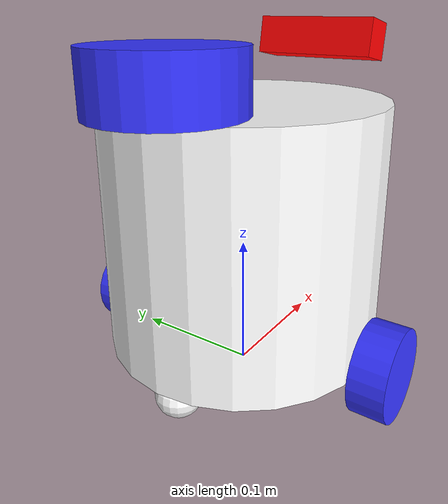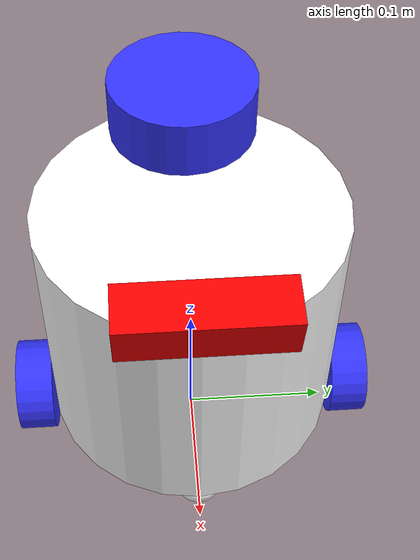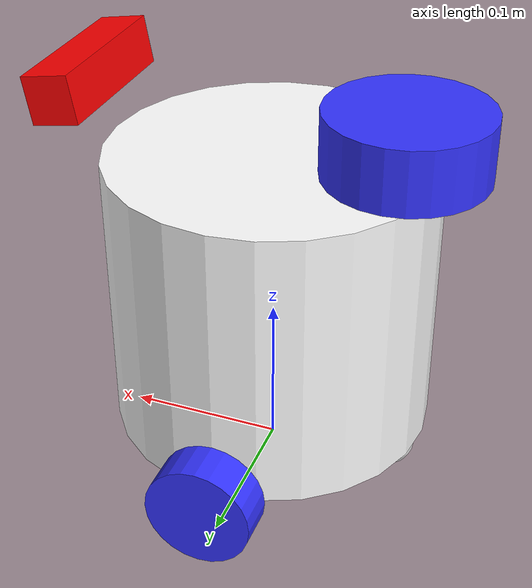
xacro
<?xml version="1.0"?>
<robot xmlns:xacro="http://www.ros.org/wiki/xacro"  name="robot">

    <xacro:arg name="use_ros2_control" default="true"/>
    <xacro:arg name="sim_mode" default="false"/>
    <xacro:include filename="robot_core.xacro" />
    <xacro:include filename="lidar.xacro" />
    <xacro:include filename="camera.xacro" />

    <xacro:if value="$(arg use_ros2_control)">
        <xacro:include filename="ros2_control.xacro" />
    </xacro:if>
    <xacro:unless value="$(arg use_ros2_control)">
        <xacro:include filename="gazebo_control.xacro" />
    </xacro:unless>

</robot>

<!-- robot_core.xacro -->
<robot xmlns:xacro="http://www.ros.org/wiki/xacro">

    <xacro:include filename="inertial_macros.xacro"/>

    <xacro:property name="chassis_radius" value="0.102"/>
    <xacro:property name="chassis_height" value="0.18"/>
    <xacro:property name="chassis_mass" value="1.5"/>

    <xacro:property name="wheel_radius" value="0.033"/>
    <xacro:property name="wheel_thickness" value="0.026"/>
    <xacro:property name="wheel_mass" value="0.05"/>

    <xacro:property name="wheel_offset_x" value="0.15"/>
    <xacro:property name="wheel_offset_y" value="0.105"/>
    <xacro:property name="wheel_offset_z" value="0.0"/>

    <xacro:property name="caster_wheel_radius" value="0.017"/>
    <xacro:property name="caster_wheel_mass" value="0.01"/>
    <xacro:property name="caster_wheel_offset_x" value="0.08"/>

    <xacro:property name="caster_wheel_offset_z" value="${-chassis_height/2 - 0.03 + caster_wheel_radius}"/>

    <material name="white">
        <color rgba="1 1 1 1"/>
    </material>
    <material name="red">
        <color rgba="1 0 0 1"/>
    </material>
    <material name="blue">
        <color rgba="0.2 0.2 1 1"/>
    </material>

    <link name="base_link"/>
    <link name="base_footprint"/>

    <joint name="base_footprint_joint" type="fixed">
        <parent link="base_link"/>
        <child link="base_footprint"/>
        <origin xyz="0 0 0" rpy="0 0 0"/>
    </joint>

    <link name="chassis">
        <visual>
            <origin xyz="0 0 0"/>
            <geometry>
                <cylinder radius="${chassis_radius}" length="${chassis_height}"/>
            </geometry>
            <material name="white"/>
        </visual>
        <collision>
            <origin xyz="0 0 0"/>
            <geometry>
                <cylinder radius="${chassis_radius}" length="${chassis_height}"/>
            </geometry>
        </collision>
        <xacro:inertial_cylinder mass="0.5" length="${chassis_height}" radius="${chassis_radius}">
            <origin xyz="0 0 0" rpy="0 0 0"/>
        </xacro:inertial_cylinder>
    </link>

    <link name="right_wheel">
        <visual>
            <geometry>
                <cylinder radius="${wheel_radius}" length="${wheel_thickness}"/>
            </geometry>
            <material name="blue"/>
        </visual>
        <collision>
            <geometry>
                <sphere radius="${wheel_radius}"/>
            </geometry>
        </collision>
        <xacro:inertial_cylinder mass="${wheel_mass}" length="${wheel_thickness}" radius="${wheel_radius}">
            <origin xyz="0 0 0" rpy="0 0 0"/>
        </xacro:inertial_cylinder>
    </link>

    <link name="left_wheel">
        <visual>
            <geometry>
                <cylinder radius="${wheel_radius}" length="${wheel_thickness}"/>
            </geometry>
            <material name="blue"/>
        </visual>
        <collision>
            <geometry>
                <sphere radius="${wheel_radius}"/>
            </geometry>
        </collision>
        <xacro:inertial_cylinder mass="${wheel_mass}" length="${wheel_thickness}" radius="${wheel_radius}">
            <origin xyz="0 0 0" rpy="0 0 0"/>
        </xacro:inertial_cylinder>
    </link>

    <link name="caster_wheel">
        <visual>
            <geometry>
                <sphere radius="${caster_wheel_radius}"/>
            </geometry>
            <material name="white"/>
        </visual>
        <collision>
            <geometry>
                <sphere radius="${caster_wheel_radius}"/>
            </geometry>
        </collision>
        <xacro:inertial_sphere mass="${caster_wheel_mass}" radius="${caster_wheel_radius}">
            <origin xyz="0 0 0" rpy="0 0 0"/>
        </xacro:inertial_sphere>
    </link>

    <link name="back_caster_wheel">
        <visual>
            <geometry>
                <sphere radius="${caster_wheel_radius}"/>
            </geometry>
            <material name="white"/>
        </visual>
        <collision>
            <geometry>
                <sphere radius="${caster_wheel_radius}"/>
            </geometry>
        </collision>
        <xacro:inertial_sphere mass="${caster_wheel_mass}" radius="${caster_wheel_radius}">
            <origin xyz="0 0 0" rpy="0 0 0"/>
        </xacro:inertial_sphere>
    </link>

    <joint name="chassis_joint" type="fixed">
        <parent link="base_link"/>
        <child link="chassis"/>
        <origin xyz="0 0 ${(chassis_height/2)+0.03}"/>
    </joint>

    <joint name="right_wheel_joint" type="continuous">
        <parent link="base_link"/>
        <child link="right_wheel"/>
        <origin xyz="0 -0.115 ${wheel_radius}" rpy="${pi/2} 0 0" />
        <axis xyz="0 0 -1"/>
    </joint>

    <joint name="left_wheel_joint" type="continuous">
        <parent link="base_link"/>
        <child link="left_wheel"/>
        <origin xyz="0 0.115 ${wheel_radius}" rpy="-${pi/2} 0 0" />
        <axis xyz="0 0 1"/>
    </joint>

    <joint name="caster_wheel_joint" type="fixed">
        <parent link="chassis"/>
        <child link="caster_wheel"/>
        <origin xyz="${caster_wheel_offset_x} 0 ${caster_wheel_offset_z}"/>
    </joint>

    <joint name="back_caster_wheel_joint" type="fixed">
        <parent link="chassis"/>
        <child link="back_caster_wheel"/>
        <origin xyz="${-caster_wheel_offset_x} 0 ${caster_wheel_offset_z}"/>
    </joint>

    <gazebo reference="chassis">
        <material>Gazebo/White</material>
    </gazebo>

    <gazebo reference="right_wheel">
        <material>Gazebo/Red</material>
    </gazebo>

    <gazebo reference="left_wheel">
        <material>Gazebo/Red</material>
    </gazebo>

    <gazebo reference="caster_wheel">
        <material>Gazebo/White</material>
        <mu1 value="0.001"/>
        <mu2 value="0.001"/>
    </gazebo>

    <gazebo reference="back_caster_wheel">
        <material>Gazebo/White</material>
        <mu1 value="0.001"/>
        <mu2 value="0.001"/>
    </gazebo>

</robot>

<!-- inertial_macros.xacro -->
<robot xmlns:xacro="http://www.ros.org/wiki/xacro" >

    <!-- Specify some standard inertial calculations https://en.wikipedia.org/wiki/List_of_moments_of_inertia -->
    <!-- These make use of xacro's mathematical functionality -->

    <xacro:macro name="inertial_sphere" params="mass radius *origin">
        <inertial>
            <xacro:insert_block name="origin"/>
            <mass value="${mass}" />
            <inertia ixx="${(2/5) * mass * (radius*radius)}" ixy="0.0" ixz="0.0"
                    iyy="${(2/5) * mass * (radius*radius)}" iyz="0.0"
                    izz="${(2/5) * mass * (radius*radius)}" />
        </inertial>
    </xacro:macro>

    <xacro:macro name="inertial_box" params="mass x y z *origin">
        <inertial>
            <xacro:insert_block name="origin"/>
            <mass value="${mass}" />
            <inertia ixx="${(1/12) * mass * (y*y+z*z)}" ixy="0.0" ixz="0.0"
                    iyy="${(1/12) * mass * (x*x+z*z)}" iyz="0.0"
                    izz="${(1/12) * mass * (x*x+y*y)}" />
        </inertial>
    </xacro:macro>

    <xacro:macro name="inertial_cylinder" params="mass length radius *origin">
        <inertial>
            <xacro:insert_block name="origin"/>
            <mass value="${mass}" />
            <inertia ixx="${(1/12) * mass * (3*radius*radius + length*length)}" ixy="0.0" ixz="0.0"
                    iyy="${(1/12) * mass * (3*radius*radius + length*length)}" iyz="0.0"
                    izz="${(1/2) * mass * (radius*radius)}" />
        </inertial>
    </xacro:macro>

</robot>

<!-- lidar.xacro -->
<robot xmlns:xacro="http://www.ros.org/wiki/xacro" >

    <joint name="laser_joint" type="fixed">
        <parent link="chassis"/>
        <child link="laser_frame"/>

        <origin xyz="-0.08 0 0.11" rpy="0 0 0"/>
    </joint>

    <link name="laser_frame">
        <visual>
            <geometry>
                <cylinder radius="0.05" length="0.04"/>
            </geometry>
            <material name="blue"/>
        </visual>
        <collision>
            <geometry>
                <cylinder radius="0.05" length="0.04"/>
            </geometry>
        </collision>
        <xacro:inertial_cylinder mass="0.1" length="0.04" radius="0.05">
            <origin xyz="0 0 0" rpy="0 0 0"/>
        </xacro:inertial_cylinder>
    </link>

    <gazebo reference="laser_frame">
        <material>Gazebo/Blue</material>

        <sensor name="laser" type="ray">
            <pose> 0 0 0 0 0 0 </pose>
            <visualize>true</visualize>
            <update_rate>10</update_rate>
            <ray>
                <scan>
                    <horizontal>
                        <samples>360</samples>
                        <min_angle>-3.14</min_angle>
                        <max_angle>3.14</max_angle>
                    </horizontal>
                </scan>
                <range>
                    <min>0.3</min>
                    <max>12</max>
                </range>
            </ray>
            <plugin name="laser_controller" filename="libgazebo_ros_ray_sensor.so">
                <ros>
                    <argument>~/out:=scan</argument>
                </ros>
                <output_type>sensor_msgs/LaserScan</output_type>
                <frame_name>laser_frame</frame_name>
            </plugin>
        </sensor>
    </gazebo>
</robot>

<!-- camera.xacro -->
<robot xmlns:xacro="http://www.ros.org/wiki/xacro">

    <!-- カメラの寸法 (Camera Dimensions in meters) -->
    <xacro:property name="camera_length" value="0.03"/>
    <xacro:property name="camera_width" value="0.10"/>
    <xacro:property name="camera_height" value="0.03"/>
    <xacro:property name="camera_mass" value="0.05"/>

    <!-- カメラの位置 (Camera Position) -->
    <xacro:property name="camera_offset_x" value="${chassis_radius + camera_length/2}"/>
    <xacro:property name="camera_offset_z" value="${chassis_height/2 + camera_height/2 + 0.02}"/>

    <!-- カメラパラメータ (Camera Parameters) -->
    <xacro:property name="camera_width_px" value="640"/>
    <xacro:property name="camera_height_px" value="480"/>
    <xacro:property name="camera_fov" value="1.3962634"/>  <!-- 80 degrees -->
    <xacro:property name="camera_fps" value="30"/>

    <!-- カメラリンク (Camera Link) -->
    <link name="camera_link">
        <visual>
            <origin xyz="0 0 0" rpy="0 0 0"/>
            <geometry>
                <box size="${camera_length} ${camera_width} ${camera_height}"/>
            </geometry>
            <material name="red"/>
        </visual>

        <collision>
            <origin xyz="0 0 0" rpy="0 0 0"/>
            <geometry>
                <box size="${camera_length} ${camera_width} ${camera_height}"/>
            </geometry>
        </collision>

        <xacro:inertial_box mass="${camera_mass}" x="${camera_length}" y="${camera_width}" z="${camera_height}">
            <origin xyz="0 0 0" rpy="0 0 0"/>
        </xacro:inertial_box>
    </link>

    <!-- カメラジョイント (Camera Joint) -->
    <joint name="camera_joint" type="fixed">
        <parent link="chassis"/>
        <child link="camera_link"/>
        <origin xyz="${camera_offset_x} 0 ${camera_offset_z}" rpy="0 ${10*pi/180} 0"/>
    </joint>

    <!-- カメラ光学フレーム (Camera Optical Frame) -->
    <link name="camera_link_optical"/>

    <joint name="camera_optical_joint" type="fixed">
        <parent link="camera_link"/>
        <child link="camera_link_optical"/>
        <origin xyz="0 0 0" rpy="${-pi/2} 0 ${-pi/2}"/>
    </joint>

    <!-- Gazeboカメラプラグイン (Gazebo Camera Plugin) -->
    <gazebo reference="camera_link">
        <material>Gazebo/Red</material>

        <sensor name="camera_sensor" type="camera">
            <update_rate>${camera_fps}</update_rate>
            <visualize>true</visualize>

            <camera name="camera">
                <horizontal_fov>${camera_fov}</horizontal_fov>
                <image>
                    <width>${camera_width_px}</width>
                    <height>${camera_height_px}</height>
                    <format>R8G8B8</format>
                </image>
                <clip>
                    <near>0.1</near>
                    <far>100</far>
                </clip>
                <noise>
                    <type>gaussian</type>
                    <mean>0.0</mean>
                    <stddev>0.007</stddev>
                </noise>
            </camera>

            <plugin name="camera_controller" filename="libgazebo_ros_camera.so">
                <ros>
                    <namespace>/</namespace>
                    <remapping>~/image_raw:=/camera/image_raw</remapping>
                    <remapping>~/camera_info:=/camera/camera_info</remapping>
                </ros>
                <camera_name>camera</camera_name>
                <frame_name>camera_link_optical</frame_name>
                <hack_baseline>0.07</hack_baseline>
            </plugin>
        </sensor>
    </gazebo>

</robot>
